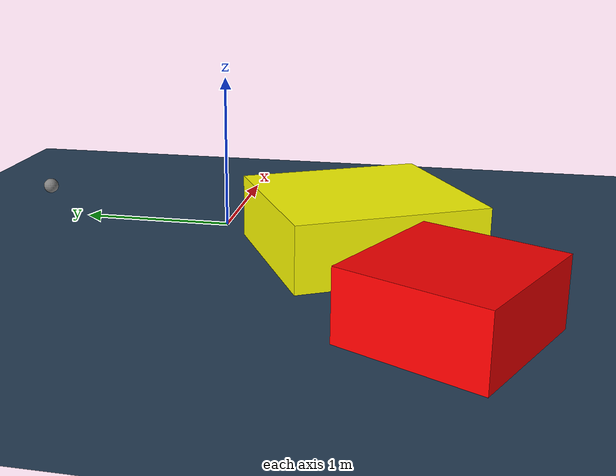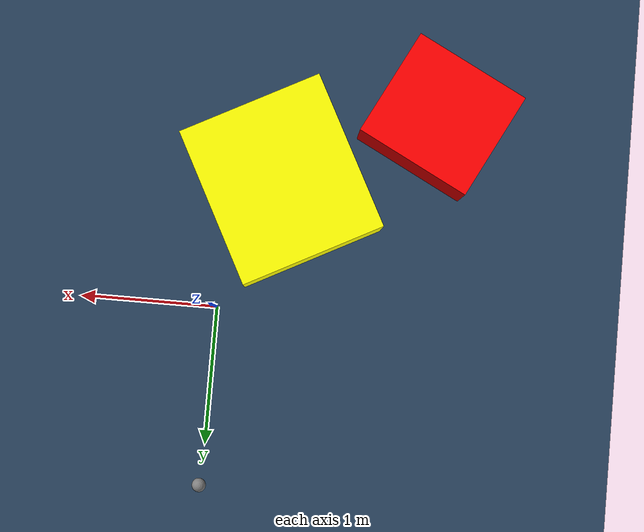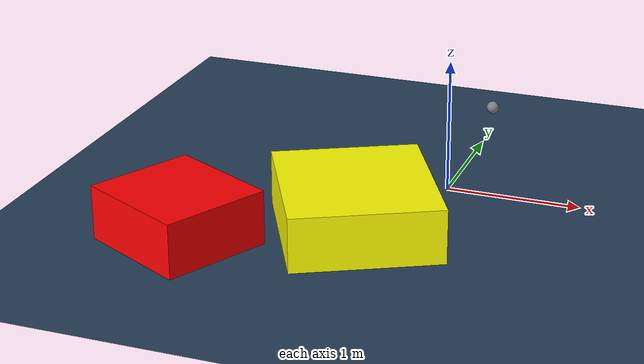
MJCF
<?xml version="1.0" ?>
<mujoco model="generated_environment">
  <option timestep="0.01" integrator="RK4" cone="elliptic"/>
  <default>
    <geom density="1"/>
  </default>
  <asset>
    <texture builtin="gradient" height="3072" rgb1="0.3 0.5 0.7" rgb2="0 0 0" type="skybox" width="512"/>
    <texture builtin="checker" height="300" mark="edge" markrgb="0.8 0.8 0.8" name="groundplane" rgb1="0.2 0.3 0.4" rgb2="0.1 0.2 0.3" type="2d" width="300"/>
    <material name="groundplane" reflectance="0.2" texrepeat="5 5" texture="groundplane" texuniform="true"/>
    <material name="robot" rgba="0.0 1.0 0.0 1"/>
  </asset>
  <worldbody>
    <light dir="0 0 -1" directional="true" pos="0 0 1.5"/>
    <geom condim="4" friction="1.0 0.005 0.001" material="groundplane" name="floor" size="0 0 0.05" type="plane"/>
    <body name="walls"/>
    <body name="robot">
      <joint name="joint_x" type="slide" pos="0 0 0" axis="1 0 0"/>
      <joint name="joint_y" type="slide" pos="0 0 0" axis="0 1 0"/>
      <geom name="robot" type="sphere" pos="0.0051670354937982665 1.275043851533153 0.2" size="0.05" mass="5." friction="1.0 0.005 0.0001" condim="4"/>
      <site name="sensor_ball"/>
    </body>
    <body name="obstacle_1_movable">
      <geom name="obstacle_1_movable" condim="4" pos="-0.3948498974046786 -0.9339175659044948 0.2" euler="0 0 207.51360556547675" friction="1.0 0.005 0.001" rgba="1 1 0 1" size="0.5379761189887091 0.5898404092184333 0.2" type="box" mass="0.1"/>
      <joint type="free"/>
    </body>
    <body name="obstacle_2_static">
      <geom name="obstacle_2_static" condim="4" pos="-1.4973507299492124 -1.4924221483867735 0.2" euler="0 0 332.64524215985796" friction="1.0 0.005 0.001" rgba="1 0 0 1" size="0.43750291109758943 0.40848748587020606 0.2" type="box"/>
    </body>
  </worldbody>
  <actuator>
    <motor name="actuator_x" joint="joint_x" gear="1" ctrlrange="-1 1"/>
    <motor name="actuator_y" joint="joint_y" gear="1" ctrlrange="-1 1"/>
  </actuator>
</mujoco>
